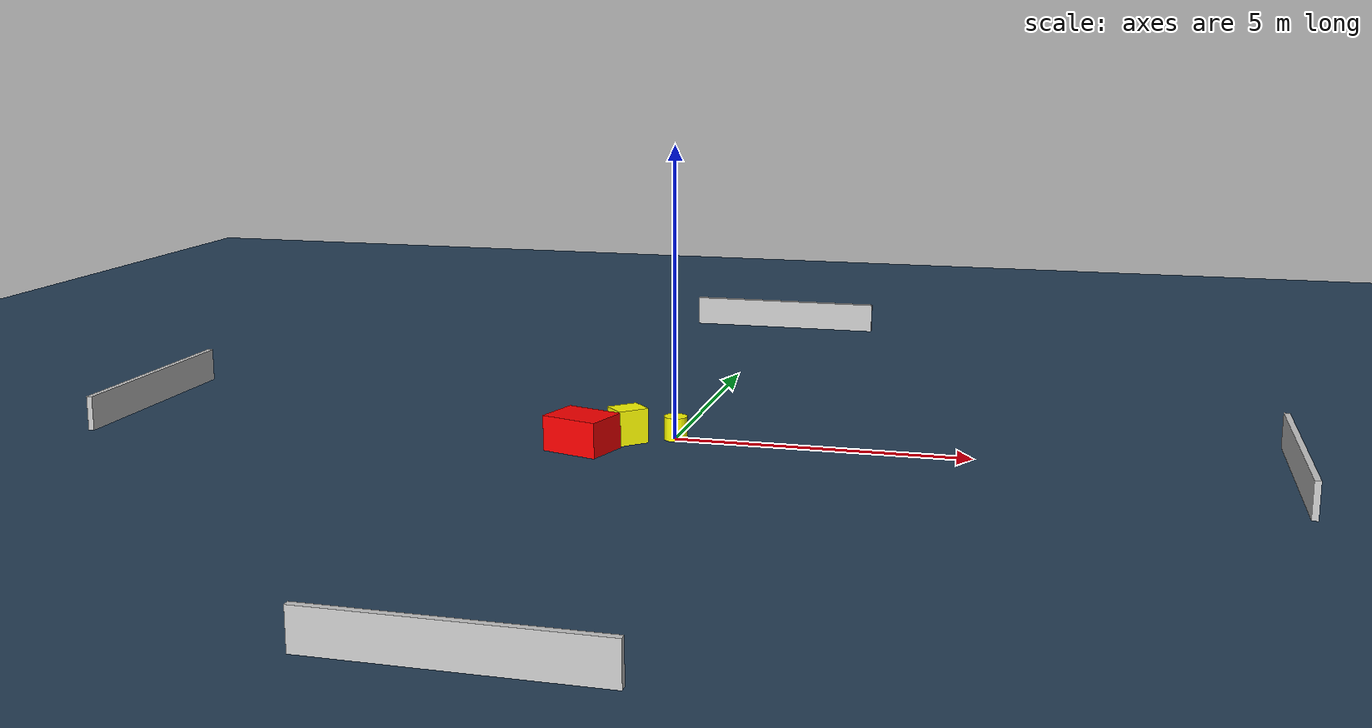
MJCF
<?xml version="1.0" ?>
<mujoco model="generated_environment">
  <option timestep="0.01" integrator="RK4" cone="elliptic"/>
  <default>
    <geom density="1"/>
  </default>
  <asset>
    <texture builtin="gradient" height="3072" name="skybox" rgb1="0.3 0.5 0.7" rgb2="0 0 0" type="skybox" width="512"/>
    <texture builtin="checker" height="300" name="groundplane" rgb1="0.2 0.3 0.4" rgb2="0.1 0.2 0.3" type="2d" width="300"/>
    <material name="groundplane" reflectance="0.2" texrepeat="5 5" texture="groundplane"/>
  </asset>
  <worldbody>
    <light dir="0 0 -1" directional="true" pos="0 0 1.5"/>
    <geom condim="3" friction="0.5 0.005 0.001" material="groundplane" name="floor" pos="0 0 0" size="0 0 0.05" type="plane"/>
    <body name="walls">
      <geom name="wall_1" condim="4" pos="-10.0 0.0 0.3" rgba="0.800000011920929 0.800000011920929 0.800000011920929 1.0" size="0.05 2.0 0.3" type="box"/>
      <geom name="wall_2" condim="4" pos="10.0 0.0 0.3" rgba="0.800000011920929 0.800000011920929 0.800000011920929 1.0" size="0.05 2.0 0.3" type="box"/>
      <geom name="wall_3" condim="4" pos="0.0 -10.0 0.3" rgba="0.800000011920929 0.800000011920929 0.800000011920929 1.0" size="2.0 0.05 0.3" type="box"/>
      <geom name="wall_4" condim="4" pos="0.0 10.0 0.3" rgba="0.800000011920929 0.800000011920929 0.800000011920929 1.0" size="2.0 0.05 0.3" type="box"/>
    </body>
    <body name="robot">
      <joint name="joint_x" type="slide" pos="0 0 0" axis="1 0 0"/>
      <joint name="joint_y" type="slide" pos="0 0 0" axis="0 1 0"/>
      <geom name="robot" type="cylinder" pos="0.0 0.0 0.2" size="0.2 0.2 0.0" mass="5.0" friction="1.0 0.005 0.0001" condim="4" rgba="1.0 1.0 0.0 1.0"/>
    </body>
    <body name="obstacle_1_movable">
      <geom name="obstacle_1_movable" condim="4" pos="-0.7371282723915676 -0.3811059619138835 0.3" euler="0 0 223.12364086764867" friction="0.0 0.005 0.001" rgba="1.0 1.0 0.0 1.0" size="0.27509245281225325 0.22258369922827004 0.3" type="box" mass="0.1"/>
      <joint type="free"/>
    </body>
    <body name="obstacle_2_static">
      <geom name="obstacle_2_static" condim="4" pos="-1.351250811941539 -1.0152895657674952 0.3" euler="0 0 253.1000506521805" friction="0.0 0.005 0.001" rgba="1.0 0.0 0.0 1.0" size="0.3960687046423969 0.508412037260602 0.3" type="box"/>
    </body>
  </worldbody>
  <actuator>
    <motor name="actuator_x" joint="joint_x" gear="1" ctrlrange="-1 1"/>
    <motor name="actuator_y" joint="joint_y" gear="1" ctrlrange="-1 1"/>
  </actuator>
</mujoco>
